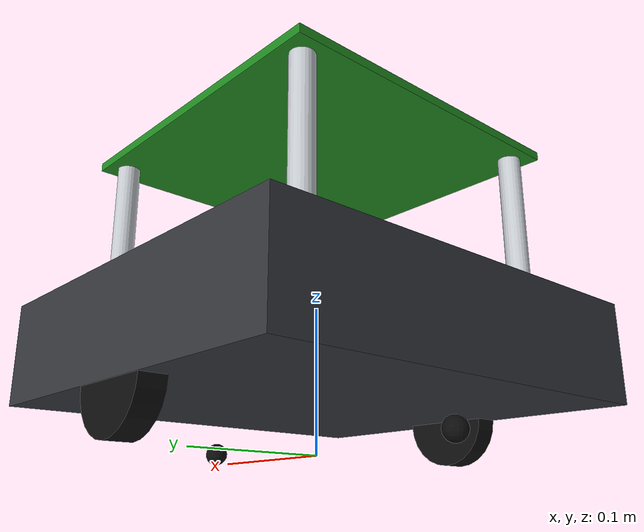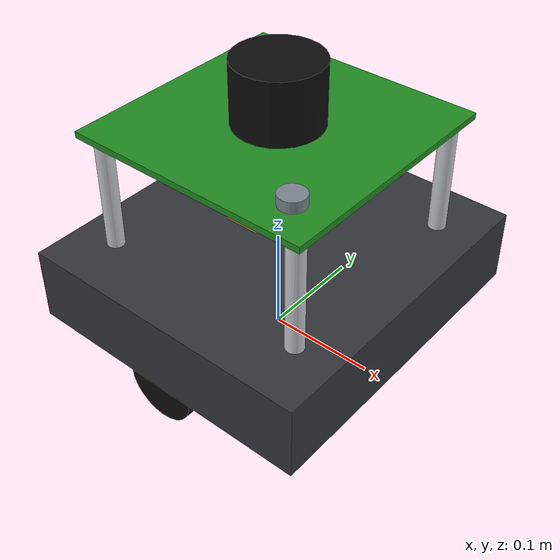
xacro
<?xml version="1.0"?>
<robot name="turtlebot_custom" xmlns:xacro="http://www.ros.org/wiki/xacro">

  <!-- CONSTANTS -->
  <xacro:property name="PI" value="3.1415926535897931" />

  <!-- Chassis (TurtleBot3 Waffle-like) -->
  <xacro:property name="base_x" value="0.281" />
  <xacro:property name="base_y" value="0.306" />
  <xacro:property name="base_z" value="0.070" />
  <xacro:property name="base_mass" value="1.80" />

  <!-- Wheels -->
  <xacro:property name="wheel_radius" value="0.033" />
  <xacro:property name="wheel_width"  value="0.018" />
  <xacro:property name="wheel_mass"   value="0.05" />
  <xacro:property name="wheel_separation" value="0.287" />  <!-- center-to-center -->
  <xacro:property name="wheel_x_offset" value="0.0" />      <!-- wheels at center of base -->

  <!-- Caster -->
  <xacro:property name="caster_radius" value="0.008" />
  <xacro:property name="caster_mass" value="0.01" />

  <!-- Standoffs (4 pillars between base and top plate) -->
  <xacro:property name="standoff_radius" value="0.008" />
  <xacro:property name="standoff_height" value="0.108" />  <!-- distance between base top and second plate -->

  <!-- Top plate (second tier) -->
  <xacro:property name="plate_x" value="0.230" />
  <xacro:property name="plate_y" value="0.230" />
  <xacro:property name="plate_z" value="0.006" />
  <xacro:property name="plate_mass" value="0.15" />

  <!-- LiDAR -->
  <xacro:property name="lidar_radius" value="0.040" />
  <xacro:property name="lidar_height" value="0.058" />
  <xacro:property name="lidar_mass" value="0.12" />

  <!-- MATERIALS -->
  <material name="dark_grey"><color rgba="0.20 0.21 0.23 1.0"/></material>
  <material name="mid_grey"><color rgba="0.50 0.53 0.57 1.0"/></material>
  <material name="light_grey"><color rgba="0.78 0.80 0.82 1.0"/></material>
  <material name="black"><color rgba="0.05 0.05 0.05 1.0"/></material>
  <material name="accent_orange"><color rgba="0.82 0.52 0.18 1.0"/></material>
  <material name="green_pcb"><color rgba="0.13 0.55 0.13 1.0"/></material>

  <!-- BASE FOOTPRINT -->
  <link name="base_footprint" />

  <joint name="base_footprint_joint" type="fixed">
    <parent link="base_footprint" />
    <child link="base_link" />
    <!-- Raise base_link so that wheels touch the ground plane -->
    <origin xyz="0.0 0.0 ${wheel_radius}" rpy="0 0 0" />
  </joint>

  <!-- BASE LINK (CHASSIS) -->
  <link name="base_link">
    <visual>
      <origin xyz="0.0 0.0 ${base_z/2}" rpy="0 0 0" />
      <geometry>
        <box size="${base_x} ${base_y} ${base_z}" />
      </geometry>
      <material name="dark_grey" />
    </visual>
    <collision>
      <origin xyz="0.0 0.0 ${base_z/2}" rpy="0 0 0" />
      <geometry>
        <box size="${base_x} ${base_y} ${base_z}" />
      </geometry>
    </collision>
    <inertial>
      <origin xyz="0.0 0.0 ${base_z/2}" rpy="0 0 0" />
      <mass value="${base_mass}" />
      <inertia ixx="${(1.0/12.0)*base_mass*(base_y*base_y + base_z*base_z)}"
               ixy="0.0" ixz="0.0"
               iyy="${(1.0/12.0)*base_mass*(base_x*base_x + base_z*base_z)}"
               iyz="0.0"
               izz="${(1.0/12.0)*base_mass*(base_x*base_x + base_y*base_y)}" />
    </inertial>
  </link>

  <!--WHEEL MACRO-->
  <xacro:macro name="wheel" params="prefix y_reflect">
    <link name="wheel_${prefix}_link">
      <visual>
        <origin xyz="0 0 0" rpy="${PI/2} 0 0" />
        <geometry>
          <cylinder radius="${wheel_radius}" length="${wheel_width}" />
        </geometry>
        <material name="black" />
      </visual>
      <collision>
        <origin xyz="0 0 0" rpy="${PI/2} 0 0" />
        <geometry>
          <cylinder radius="${wheel_radius}" length="${wheel_width}" />
        </geometry>
      </collision>
      <inertial>
        <origin xyz="0 0 0" />
        <mass value="${wheel_mass}" />
        <inertia ixx="${(1.0/12.0)*wheel_mass*(3*wheel_radius*wheel_radius + wheel_width*wheel_width)}"
                 ixy="0" ixz="0"
                 iyy="${(1.0/12.0)*wheel_mass*(3*wheel_radius*wheel_radius + wheel_width*wheel_width)}"
                 iyz="0"
                 izz="${(1.0/2.0)*wheel_mass*wheel_radius*wheel_radius}" />
      </inertial>
    </link>

    <joint name="wheel_${prefix}_joint" type="continuous">
      <parent link="base_link" />
      <child link="wheel_${prefix}_link" />
      <origin xyz="${wheel_x_offset} ${y_reflect * wheel_separation/2} 0.0" rpy="0 0 0" />
      <axis xyz="0 1 0" />
      <dynamics damping="0.01" friction="0.1" />
    </joint>
  </xacro:macro>

  <xacro:wheel prefix="left"  y_reflect="1"  />
  <xacro:wheel prefix="right" y_reflect="-1" />

  <!-- CASTER WHEELS (FRONT & BACK) -->
  <xacro:macro name="caster" params="prefix x_offset">
    <link name="caster_${prefix}_link">
      <visual>
        <origin xyz="0 0 0" rpy="0 0 0" />
        <geometry>
          <sphere radius="${caster_radius}" />
        </geometry>
        <material name="black" />
      </visual>
      <collision>
        <origin xyz="0 0 0" rpy="0 0 0" />
        <geometry>
          <sphere radius="${caster_radius}" />
        </geometry>
        <surface>
          <friction>
            <ode>
              <mu>0.0</mu>
              <mu2>0.0</mu2>
            </ode>
          </friction>
        </surface>
      </collision>
      <inertial>
        <origin xyz="0 0 0" />
        <mass value="${caster_mass}" />
        <inertia ixx="${(2.0/5.0)*caster_mass*caster_radius*caster_radius}"
                 ixy="0" ixz="0"
                 iyy="${(2.0/5.0)*caster_mass*caster_radius*caster_radius}"
                 iyz="0"
                 izz="${(2.0/5.0)*caster_mass*caster_radius*caster_radius}" />
      </inertial>
    </link>

    <joint name="caster_${prefix}_joint" type="fixed">
      <parent link="base_link" />
      <child link="caster_${prefix}_link" />
      <origin xyz="${x_offset} 0.0 ${-(wheel_radius - caster_radius)}" rpy="0 0 0" />
    </joint>
  </xacro:macro>

  <xacro:caster prefix="front" x_offset="${base_x/2 - 0.025}" />
  <xacro:caster prefix="back"  x_offset="${-(base_x/2 - 0.025)}" />

  <!-- STANDOFF PILLARS (4 pillars)-->
  <xacro:macro name="standoff" params="prefix x_pos y_pos">
    <link name="standoff_${prefix}_link">
      <visual>
        <origin xyz="0 0 ${standoff_height/2}" rpy="0 0 0" />
        <geometry>
          <cylinder radius="${standoff_radius}" length="${standoff_height}" />
        </geometry>
        <material name="light_grey" />
      </visual>
      <collision>
        <origin xyz="0 0 ${standoff_height/2}" rpy="0 0 0" />
        <geometry>
          <cylinder radius="${standoff_radius}" length="${standoff_height}" />
        </geometry>
      </collision>
      <inertial>
        <origin xyz="0 0 ${standoff_height/2}" />
        <mass value="0.02" />
        <inertia ixx="0.00001" ixy="0" ixz="0" iyy="0.00001" iyz="0" izz="0.000001" />
      </inertial>
    </link>

    <joint name="standoff_${prefix}_joint" type="fixed">
      <parent link="base_link" />
      <child link="standoff_${prefix}_link" />
      <origin xyz="${x_pos} ${y_pos} ${base_z}" rpy="0 0 0" />
    </joint>
  </xacro:macro>

  <xacro:standoff prefix="front_left"  x_pos="${plate_x/2 - 0.015}"  y_pos="${plate_y/2 - 0.015}" />
  <xacro:standoff prefix="front_right" x_pos="${plate_x/2 - 0.015}"  y_pos="${-(plate_y/2 - 0.015)}" />
  <xacro:standoff prefix="back_left"   x_pos="${-(plate_x/2 - 0.015)}" y_pos="${plate_y/2 - 0.015}" />
  <xacro:standoff prefix="back_right"  x_pos="${-(plate_x/2 - 0.015)}" y_pos="${-(plate_y/2 - 0.015)}" />

  <!--TOP PLATE (SECOND TIER)-->
  <link name="top_plate_link">
    <visual>
      <origin xyz="0.0 0.0 0.0" rpy="0 0 0" />
      <geometry>
        <box size="${plate_x} ${plate_y} ${plate_z}" />
      </geometry>
      <material name="green_pcb" />
    </visual>
    <collision>
      <origin xyz="0.0 0.0 0.0" rpy="0 0 0" />
      <geometry>
        <box size="${plate_x} ${plate_y} ${plate_z}" />
      </geometry>
    </collision>
    <inertial>
      <origin xyz="0.0 0.0 0.0" rpy="0 0 0" />
      <mass value="${plate_mass}" />
      <inertia ixx="${(1.0/12.0)*plate_mass*(plate_y*plate_y + plate_z*plate_z)}"
               ixy="0.0" ixz="0.0"
               iyy="${(1.0/12.0)*plate_mass*(plate_x*plate_x + plate_z*plate_z)}"
               iyz="0.0"
               izz="${(1.0/12.0)*plate_mass*(plate_x*plate_x + plate_y*plate_y)}" />
    </inertial>
  </link>

  <joint name="top_plate_joint" type="fixed">
    <parent link="base_link" />
    <child link="top_plate_link" />
    <origin xyz="0.0 0.0 ${base_z + standoff_height + plate_z/2}" rpy="0 0 0" />
  </joint>

  <!--  LiDAR SENSOR -->
  <link name="lidar_link">
    <visual>
      <origin xyz="0 0 ${lidar_height/2}" rpy="0 0 0" />
      <geometry>
        <cylinder radius="${lidar_radius}" length="${lidar_height}" />
      </geometry>
      <material name="black" />
    </visual>
    <collision>
      <origin xyz="0 0 ${lidar_height/2}" rpy="0 0 0" />
      <geometry>
        <cylinder radius="${lidar_radius}" length="${lidar_height}" />
      </geometry>
    </collision>
    <inertial>
      <origin xyz="0 0 ${lidar_height/2}" />
      <mass value="${lidar_mass}" />
      <inertia ixx="${(1.0/12.0)*lidar_mass*(3*lidar_radius*lidar_radius + lidar_height*lidar_height)}"
               ixy="0" ixz="0"
               iyy="${(1.0/12.0)*lidar_mass*(3*lidar_radius*lidar_radius + lidar_height*lidar_height)}"
               iyz="0"
               izz="${(1.0/2.0)*lidar_mass*lidar_radius*lidar_radius}" />
    </inertial>
  </link>

  <joint name="lidar_joint" type="fixed">
    <parent link="top_plate_link" />
    <child link="lidar_link" />
    <origin xyz="0.0 0.0 ${plate_z/2}" rpy="0 0 0" />
  </joint>

  <!-- Scan frame – where the laser rays originate (top of the LiDAR unit) -->
  <link name="base_scan" />

  <joint name="scan_joint" type="fixed">
    <parent link="lidar_link" />
    <child link="base_scan" />
    <origin xyz="0 0 ${lidar_height}" rpy="0 0 0" />
  </joint>

  <!--  IMU SENSOR -->
  <link name="imu_link">
    <visual>
      <origin xyz="0 0 0" rpy="0 0 0" />
      <geometry>
        <box size="0.035 0.025 0.012" />
      </geometry>
      <material name="accent_orange" />
    </visual>
    <inertial>
      <origin xyz="0 0 0" />
      <mass value="0.005" />
      <inertia ixx="0.000001" ixy="0" ixz="0" iyy="0.000001" iyz="0" izz="0.000001" />
    </inertial>
  </link>

  <joint name="imu_joint" type="fixed">
    <parent link="base_link" />
    <child link="imu_link" />
    <origin xyz="-0.032 0.0 ${base_z + 0.006}" rpy="0 0 0" />
  </joint>

  <!-- GPS SENSOR -->
  <link name="gps_link">
    <visual>
      <origin xyz="0 0 0" rpy="0 0 0" />
      <geometry>
        <cylinder radius="0.012" length="0.010" />
      </geometry>
      <material name="mid_grey" />
    </visual>
    <inertial>
      <origin xyz="0 0 0" />
      <mass value="0.005" />
      <inertia ixx="0.000001" ixy="0" ixz="0" iyy="0.000001" iyz="0" izz="0.000001" />
    </inertial>
  </link>

  <joint name="gps_joint" type="fixed">
    <parent link="top_plate_link" />
    <child link="gps_link" />
    <origin xyz="${plate_x/2 - 0.035} ${-(plate_y/2 - 0.035)} ${plate_z/2 + 0.005}" rpy="0 0 0" />
  </joint>

  <!-- GAZEBO MATERIAL COLORS -->
  <gazebo reference="base_link">
    <material>Gazebo/DarkGrey</material>
  </gazebo>
  <gazebo reference="top_plate_link">
    <material>Gazebo/Green</material>
  </gazebo>
  <gazebo reference="wheel_left_link">
    <material>Gazebo/FlatBlack</material>
  </gazebo>
  <gazebo reference="wheel_right_link">
    <material>Gazebo/FlatBlack</material>
  </gazebo>
  <gazebo reference="caster_front_link">
    <material>Gazebo/FlatBlack</material>
    <mu1>0.0</mu1>
    <mu2>0.0</mu2>
  </gazebo>
  <gazebo reference="caster_back_link">
    <material>Gazebo/FlatBlack</material>
    <mu1>0.0</mu1>
    <mu2>0.0</mu2>
  </gazebo>
  <gazebo reference="lidar_link">
    <material>Gazebo/FlatBlack</material>
  </gazebo>
  <gazebo reference="imu_link">
    <material>Gazebo/Orange</material>
  </gazebo>

  <!-- GAZEBO PLUGINS =-->

  <!-- Differential Drive Plugin (Gazebo Harmonic / gz-sim) -->
  <gazebo>
    <plugin filename="gz-sim-diff-drive-system" name="gz::sim::systems::DiffDrive">
      <left_joint>wheel_left_joint</left_joint>
      <right_joint>wheel_right_joint</right_joint>
      <wheel_separation>${wheel_separation}</wheel_separation>
      <wheel_radius>${wheel_radius}</wheel_radius>
      <max_linear_acceleration>1.0</max_linear_acceleration>
      <max_angular_acceleration>2.0</max_angular_acceleration>
      <odom_publish_frequency>30</odom_publish_frequency>
      <topic>cmd_vel</topic>
      <odom_topic>odom</odom_topic>
      <tf_topic>tf</tf_topic>
      <frame_id>odom</frame_id>
      <child_frame_id>base_footprint</child_frame_id>
    </plugin>
  </gazebo>

  <!-- Joint State Publisher Plugin -->
  <gazebo>
    <plugin filename="gz-sim-joint-state-publisher-system" name="gz::sim::systems::JointStatePublisher">
      <joint_name>wheel_left_joint</joint_name>
      <joint_name>wheel_right_joint</joint_name>
      <update_rate>30</update_rate>
      <topic>joint_states</topic>
    </plugin>
  </gazebo>

  <!-- 2D LiDAR Plugin (GPU Ray) -->
  <gazebo reference="base_scan">
    <sensor name="lidar" type="gpu_lidar">
      <always_on>true</always_on>
      <visualize>true</visualize>
      <update_rate>5</update_rate>
      <topic>scan</topic>
      <gz_frame_id>base_scan</gz_frame_id>
      <lidar>
        <scan>
          <horizontal>
            <samples>360</samples>
            <resolution>1</resolution>
            <min_angle>0.0</min_angle>
            <max_angle>${2*PI}</max_angle>
          </horizontal>
        </scan>
        <range>
          <min>0.120</min>
          <max>3.5</max>
          <resolution>0.015</resolution>
        </range>
        <noise>
          <type>gaussian</type>
          <mean>0.0</mean>
          <stddev>0.01</stddev>
        </noise>
      </lidar>
    </sensor>
  </gazebo>

  <!-- IMU Plugin -->
  <gazebo reference="imu_link">
    <sensor name="imu" type="imu">
      <always_on>true</always_on>
      <update_rate>100</update_rate>
      <topic>imu</topic>
      <gz_frame_id>imu_link</gz_frame_id>
      <imu>
        <angular_velocity>
          <x><noise type="gaussian"><mean>0.0</mean><stddev>0.0002</stddev></noise></x>
          <y><noise type="gaussian"><mean>0.0</mean><stddev>0.0002</stddev></noise></y>
          <z><noise type="gaussian"><mean>0.0</mean><stddev>0.0002</stddev></noise></z>
        </angular_velocity>
        <linear_acceleration>
          <x><noise type="gaussian"><mean>0.0</mean><stddev>0.017</stddev></noise></x>
          <y><noise type="gaussian"><mean>0.0</mean><stddev>0.017</stddev></noise></y>
          <z><noise type="gaussian"><mean>0.0</mean><stddev>0.017</stddev></noise></z>
        </linear_acceleration>
      </imu>
    </sensor>
  </gazebo>

</robot>
